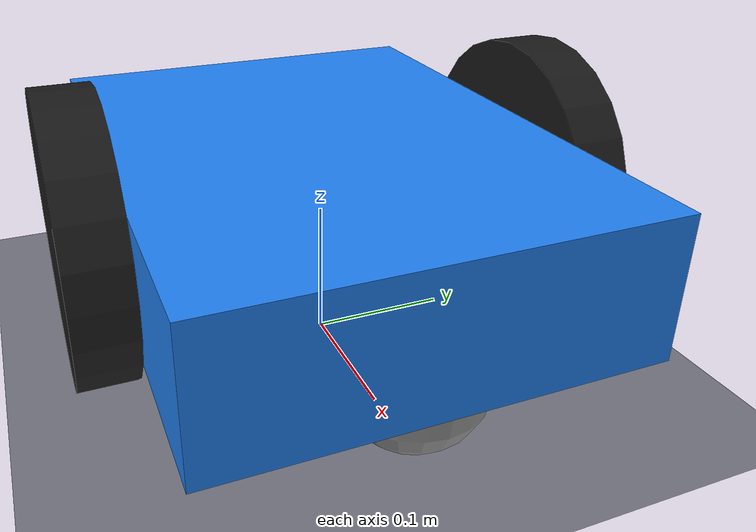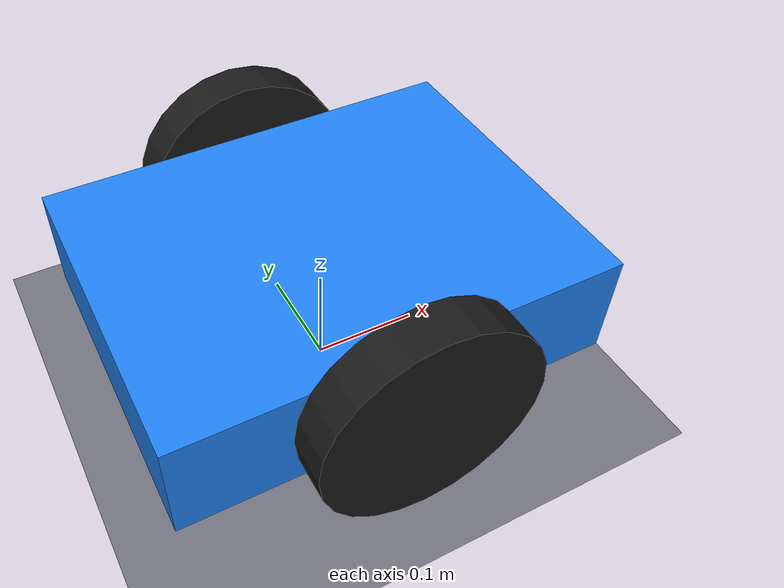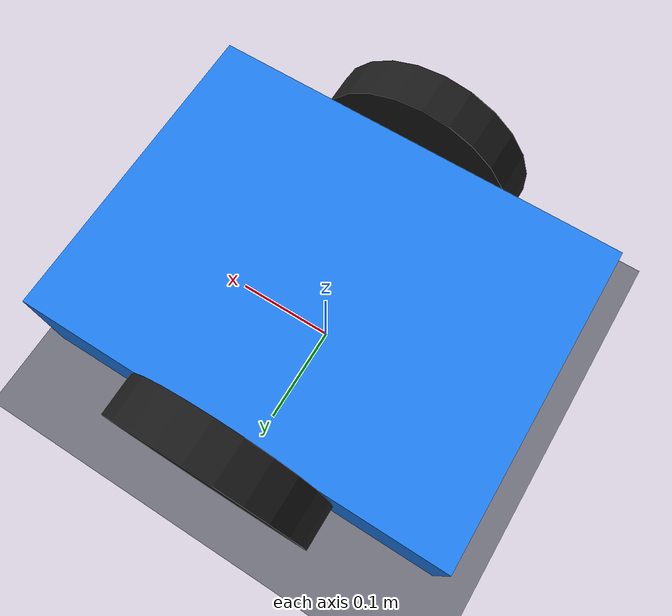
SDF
<?xml version="1.0" ?>
<sdf version="1.9">
  <world name="default">

    <plugin filename="ignition-gazebo-physics-system"
            name="ignition::gazebo::systems::Physics"/>
    <plugin filename="ignition-gazebo-user-commands-system"
            name="ignition::gazebo::systems::UserCommands"/>
    <plugin filename="ignition-gazebo-scene-broadcaster-system"
            name="ignition::gazebo::systems::SceneBroadcaster"/>

    <physics name="default_physics" default="0" type="dart">
      <max_step_size>0.004</max_step_size>
      <real_time_factor>1.0</real_time_factor>
      <real_time_update_rate>250</real_time_update_rate>
    </physics>

    <gravity>0 0 -9.8</gravity>

    <light name="sun" type="directional">
      <pose>0 0 10 0 0 0</pose>
      <cast_shadows>true</cast_shadows>
      <diffuse>0.9 0.9 0.9 1</diffuse>
      <specular>0.2 0.2 0.2 1</specular>
      <direction>-0.5 0.1 -0.9</direction>
    </light>

    <model name="ground_plane">
      <static>true</static>
      <link name="link">
        <collision name="collision">
          <geometry>
            <plane>
              <normal>0 0 1</normal>
              <size>100 100</size>
            </plane>
          </geometry>
          <surface>
            <friction>
              <ode>
                <mu>100</mu>
                <mu2>50</mu2>
              </ode>
            </friction>
          </surface>
        </collision>
        <visual name="visual">
          <cast_shadows>false</cast_shadows>
          <geometry>
            <plane>
              <normal>0 0 1</normal>
              <size>100 100</size>
            </plane>
          </geometry>
          <material>
            <ambient>0.4 0.4 0.45 1</ambient>
            <diffuse>0.45 0.45 0.5 1</diffuse>
          </material>
        </visual>
      </link>
    </model>

    <model name="diff_drive_robot">
      <pose>0 0 0.11 0 0 0</pose>

      <link name="base_link">
        <inertial>
          <mass>5.0</mass>
          <inertia>
            <ixx>0.1</ixx><ixy>0</ixy><ixz>0</ixz>
            <iyy>0.1</iyy><iyz>0</iyz>
            <izz>0.1</izz>
          </inertia>
        </inertial>
        <collision name="base_collision">
          <geometry><box><size>0.4 0.3 0.1</size></box></geometry>
        </collision>
        <visual name="base_visual">
          <geometry><box><size>0.4 0.3 0.1</size></box></geometry>
          <material>
            <ambient>0.13 0.51 0.96 1</ambient>
            <diffuse>0.13 0.51 0.96 1</diffuse>
          </material>
        </visual>
      </link>

      <link name="left_wheel">
        <pose relative_to="base_link">0 0.17 0 0 0 0</pose>
        <inertial>
          <mass>0.5</mass>
          <inertia>
            <ixx>0.001</ixx><ixy>0</ixy><ixz>0</ixz>
            <iyy>0.001</iyy><iyz>0</iyz>
            <izz>0.001</izz>
          </inertia>
        </inertial>
        <collision name="left_wheel_collision">
          <pose>0 0 0 1.5707963 0 0</pose>
          <geometry><cylinder><radius>0.1</radius><length>0.04</length></cylinder></geometry>
          <surface>
            <friction>
              <ode><mu>1.0</mu><mu2>1.0</mu2></ode>
            </friction>
          </surface>
        </collision>
        <visual name="left_wheel_visual">
          <pose>0 0 0 1.5707963 0 0</pose>
          <geometry><cylinder><radius>0.1</radius><length>0.04</length></cylinder></geometry>
          <material>
            <ambient>0.1 0.1 0.1 1</ambient>
            <diffuse>0.1 0.1 0.1 1</diffuse>
          </material>
        </visual>
      </link>

      <link name="right_wheel">
        <pose relative_to="base_link">0 -0.17 0 0 0 0</pose>
        <inertial>
          <mass>0.5</mass>
          <inertia>
            <ixx>0.001</ixx><ixy>0</ixy><ixz>0</ixz>
            <iyy>0.001</iyy><iyz>0</iyz>
            <izz>0.001</izz>
          </inertia>
        </inertial>
        <collision name="right_wheel_collision">
          <pose>0 0 0 1.5707963 0 0</pose>
          <geometry><cylinder><radius>0.1</radius><length>0.04</length></cylinder></geometry>
          <surface>
            <friction>
              <ode><mu>1.0</mu><mu2>1.0</mu2></ode>
            </friction>
          </surface>
        </collision>
        <visual name="right_wheel_visual">
          <pose>0 0 0 1.5707963 0 0</pose>
          <geometry><cylinder><radius>0.1</radius><length>0.04</length></cylinder></geometry>
          <material>
            <ambient>0.1 0.1 0.1 1</ambient>
            <diffuse>0.1 0.1 0.1 1</diffuse>
          </material>
        </visual>
      </link>

      <link name="caster">
        <pose relative_to="base_link">0.15 0 -0.05 0 0 0</pose>
        <inertial>
          <mass>0.1</mass>
          <inertia>
            <ixx>0.0001</ixx><ixy>0</ixy><ixz>0</ixz>
            <iyy>0.0001</iyy><iyz>0</iyz>
            <izz>0.0001</izz>
          </inertia>
        </inertial>
        <collision name="caster_collision">
          <geometry><sphere><radius>0.05</radius></sphere></geometry>
          <surface>
            <friction>
              <ode><mu>0.0</mu><mu2>0.0</mu2></ode>
            </friction>
          </surface>
        </collision>
        <visual name="caster_visual">
          <geometry><sphere><radius>0.05</radius></sphere></geometry>
          <material>
            <ambient>0.55 0.55 0.55 1</ambient>
            <diffuse>0.55 0.55 0.55 1</diffuse>
          </material>
        </visual>
      </link>

      <joint name="left_wheel_joint" type="revolute">
        <parent>base_link</parent>
        <child>left_wheel</child>
        <axis>
          <xyz>0 1 0</xyz>
          <dynamics>
            <friction>0.05</friction>
          </dynamics>
          <limit>
            <lower>-1e16</lower>
            <upper>1e16</upper>
          </limit>
        </axis>
      </joint>

      <joint name="right_wheel_joint" type="revolute">
        <parent>base_link</parent>
        <child>right_wheel</child>
        <axis>
          <xyz>0 1 0</xyz>
          <dynamics>
            <friction>0.05</friction>
          </dynamics>
          <limit>
            <lower>-1e16</lower>
            <upper>1e16</upper>
          </limit>
        </axis>
      </joint>

      <joint name="caster_joint" type="fixed">
        <parent>base_link</parent>
        <child>caster</child>
      </joint>

      <plugin filename="ignition-gazebo-diff-drive-system"
              name="ignition::gazebo::systems::DiffDrive">
        <left_joint>left_wheel_joint</left_joint>
        <right_joint>right_wheel_joint</right_joint>
        <wheel_separation>0.34</wheel_separation>
        <wheel_radius>0.1</wheel_radius>
        <odom_publish_frequency>30</odom_publish_frequency>
        <topic>/cmd_vel</topic>
        <odom_topic>/odom</odom_topic>
        <frame_id>odom</frame_id>
        <child_frame_id>base_link</child_frame_id>
      </plugin>
    </model>

  </world>
</sdf>
